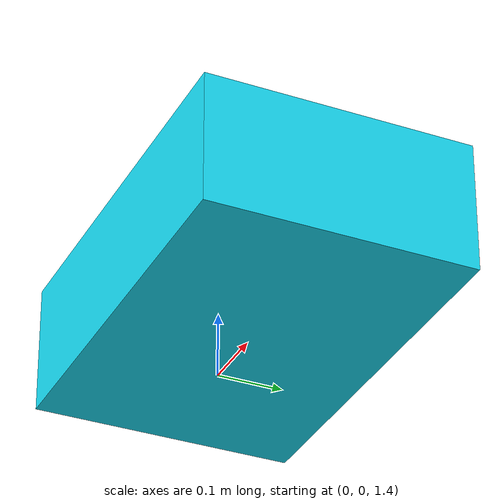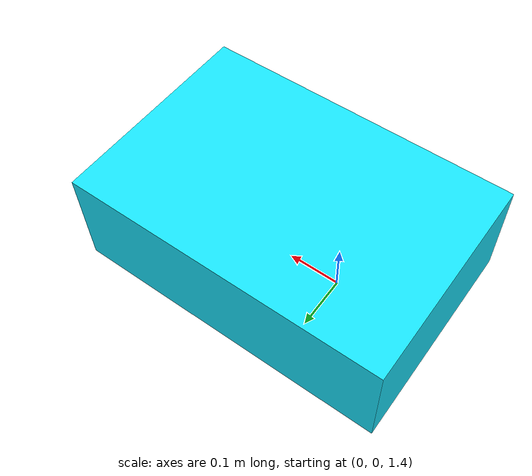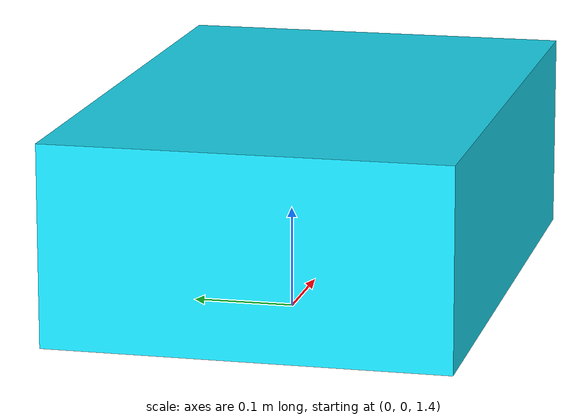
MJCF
<mujoco>
	<asset>
		<texture type="2d" name="podlaha_textura" builtin="checker" mark="edge" rgb1="0.2 0.3 0.4" rgb2="0.1 0.2 0.3" markrgb="0.8 0.8 0.8" width="256" height="256"/>
		<material name="podlaha" texture="podlaha_textura" texuniform="true" texrepeat="5 5" reflectance="0"/>
	</asset>

	<worldbody>
        <light diffuse="0.6 0.6 0.6" pos="0 0 3" dir="0 0 -1" directional="true"/>
		<geom type="plane" size="5 5 0.1" material="podlaha"/>

		<body pos="0.1 0 1.5" euler = "0 90 0" >
			<geom type="box" size=".1 .2 .3" rgba="0.1 0.9 1 1"/>
			<joint name="nahore" type="free"/>
		</body>

	</worldbody>

	<actuator>
		<!--05.03.2024 Пока хз как применить точечную силу на тело (предварительная мысль как поднимать дрон)-->
		<motor name="motor" joint="nahore" gear="1" ctrllimited="true" ctrlrange="-100 100"/>
	</actuator>

</mujoco>
